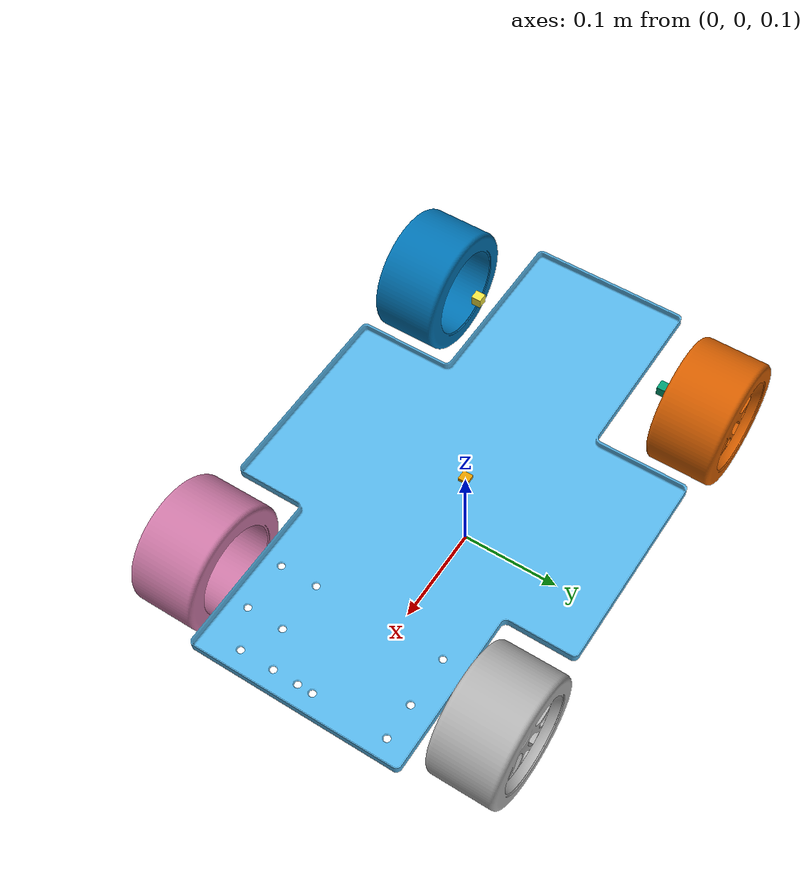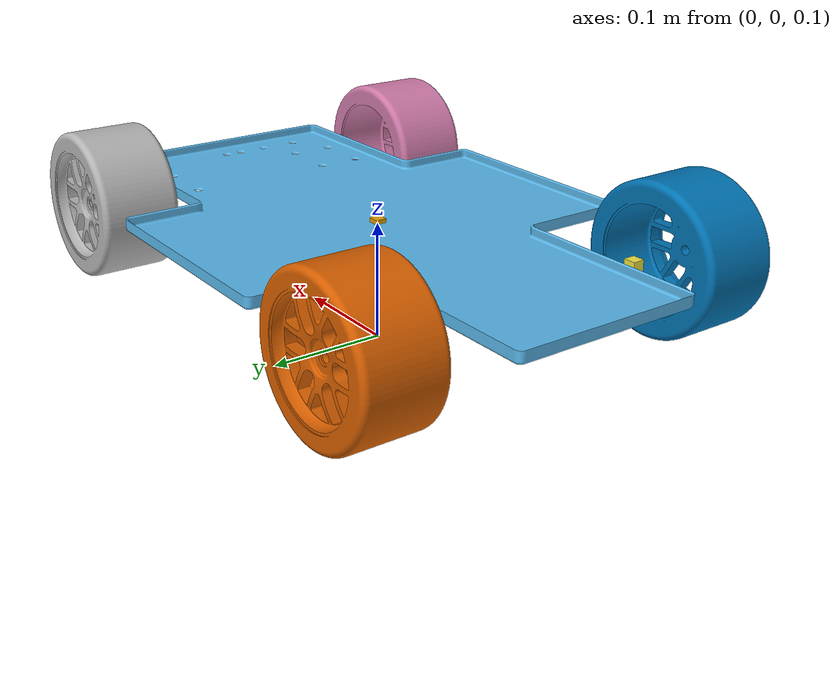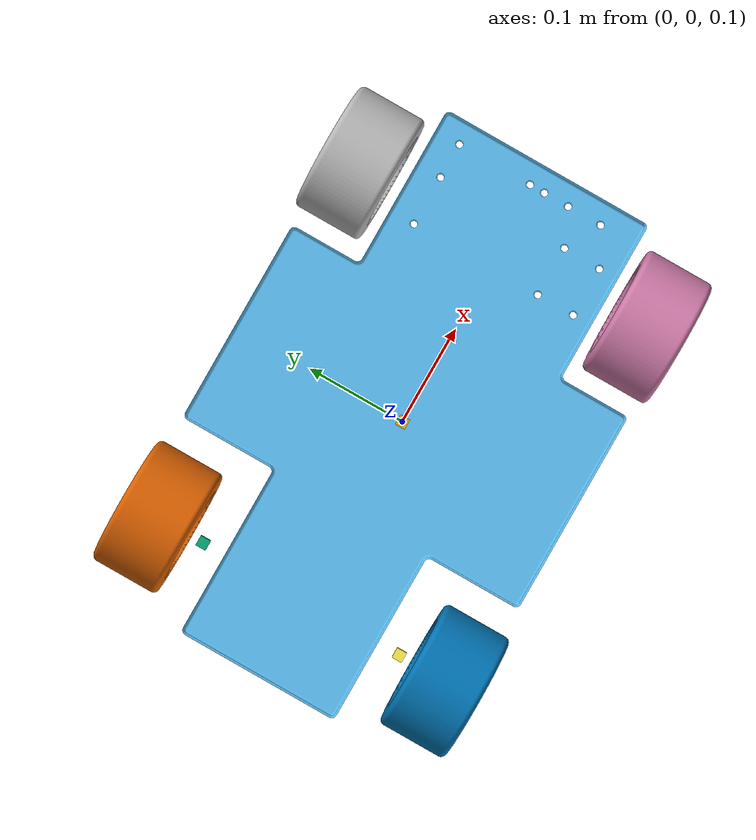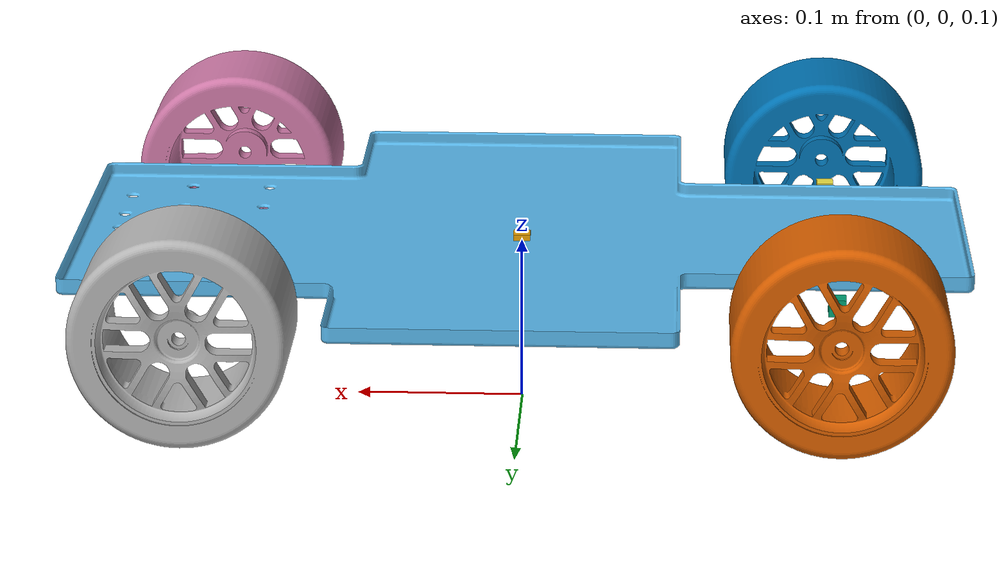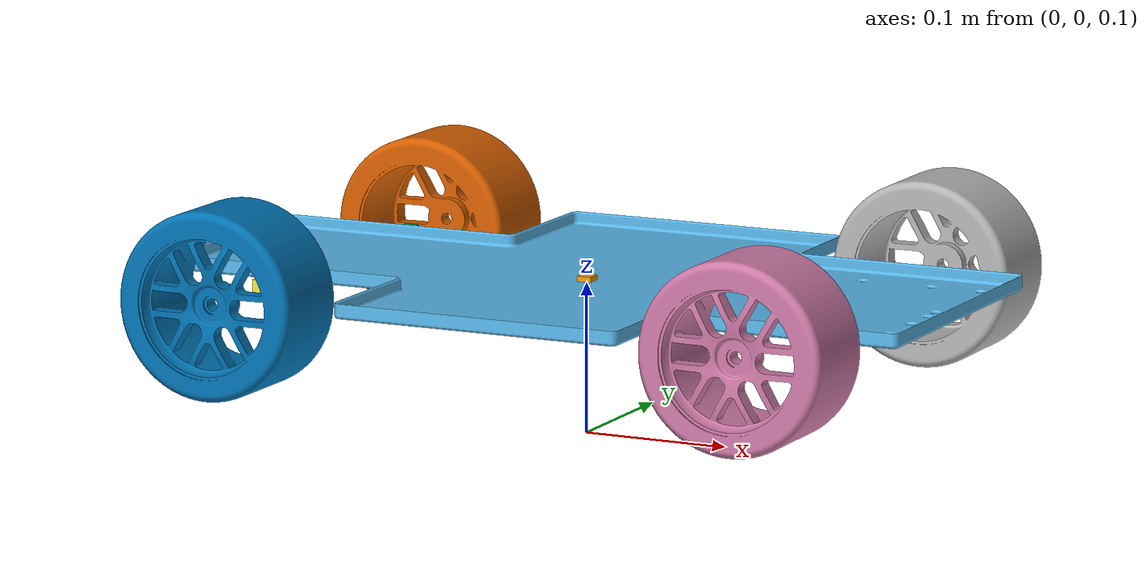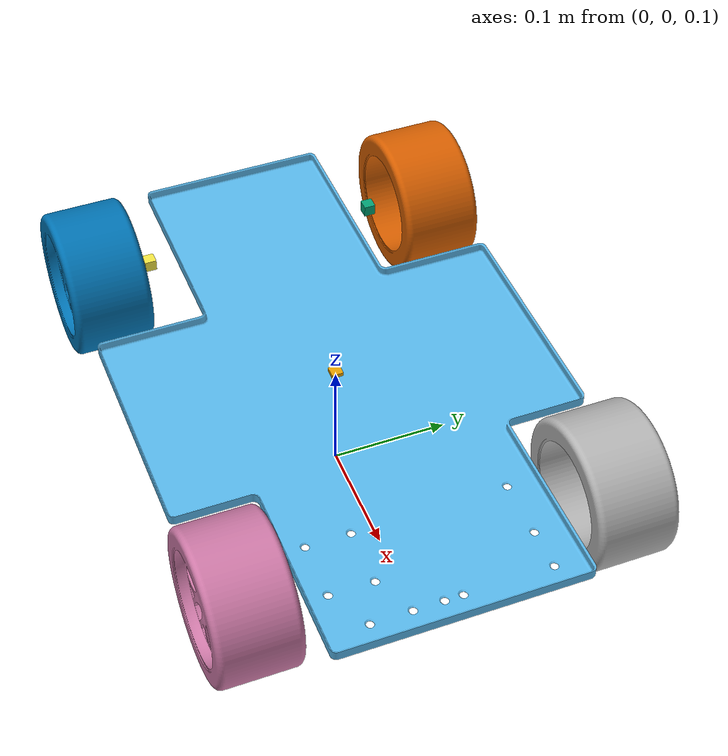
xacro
<?xml version="1.0"?>
<robot name="vehicle" xmlns:xacro="http://ros.org/wiki/xacro">

    <xacro:property name="VehicleHeight" value="0.2" />

    <xacro:property name="Right" value="-1" />
    <xacro:property name="Left" value="1" />

    <xacro:property name="Back" value="1" />
    <xacro:property name="Front" value="-1" />

    <xacro:property name="DistWheelsRightLeft" value="0.300" />
    <xacro:property name="DistWheelsFrontBack" value="0.370" />
    <xacro:property name="AxleSize" value="0.205" />
    <xacro:property name="AxleWheels" value="0.0475" />

    <xacro:property name="WheelMass" value="1" />
    <xacro:property name="BaseMass" value="4" />

    <link name="vehicle">
        <visual>
            <origin rpy="0 0 0" xyz="0 0 ${VehicleHeight}"/>
            <geometry>
                <box size="0.01 0.01 0.01"/>
            </geometry>
        </visual>
    </link>

    <link name="base_link">
        <visual>
            <origin xyz="0 0 ${VehicleHeight}"/>
            <geometry>
                <mesh filename="package://autonomous_vehicle_description/meshes/Base.stl"/>
            </geometry>
        </visual>
        <collision>
            <origin xyz="0 0 ${VehicleHeight}"/>
            <geometry>
                <box size="0.53 0.14 0.01"/>
            </geometry>
        </collision>

        <inertial>
            <mass value="${BaseMass}" />
            <inertia ixx="0.163866" ixy="-0.000150" ixz="0.000062" iyy="0.418963" iyz="0.000000" izz="0.582709" />
        </inertial>

    </link>

    <joint name="vehicle_dummy_joint" type="fixed">
        <parent link="vehicle"/>
        <child link="base_link"/>
        <origin xyz="0 0 0"/>
    </joint>

    <link name="left_axle">
        <visual>
            <geometry>
                <box size="0.01 0.01 0.01"/>
            </geometry>
        </visual>
        <contact>
            <geometry>
                <box size="0.01 0.01 0.01"/>
            </geometry>
        </contact>
        <inertial>
            <mass value="0.01" />
            <inertia ixx="0.001" ixy="0.000000" ixz="0.000000" iyy="0.001" iyz="0.000000" izz="0.001" />
        </inertial>
    </link>

    <joint name="axle_left_rotate_joint" type="revolute">
        <axis xyz="0 0 1"/>
        <parent link="vehicle"/>
        <child link="left_axle"/>
        <origin xyz="${Front * DistWheelsFrontBack/2} ${Left*AxleSize/2} ${VehicleHeight}"/>
        <limit effort="1000.0" lower="-0.35" upper="0.35" velocity="0.5"/>
    </joint>

    <transmission name="axle_left_rotate_trans">
        <type>hardware_interface/SimpleTransmission</type>
        <actuator name="$axle_left_rotate_motor">
          <mechanicalReduction>1</mechanicalReduction>
        </actuator>
        <joint name="axle_left_rotate_joint">
          <hardwareInterface>PositionJointInterface</hardwareInterface>
        </joint>
    </transmission>

    <link name="right_axle">
        <visual>
            <geometry>
                <box size="0.01 0.01 0.01"/>
            </geometry>
        </visual>
        <contact>
            <geometry>
                <box size="0.01 0.01 0.01"/>
            </geometry>
        </contact>
        <inertial>
            <mass value="0.01" />
            <inertia ixx="0.001" ixy="0.000000" ixz="0.000000" iyy="0.001" iyz="0.000000" izz="0.001" />
        </inertial>
    </link>

    <joint name="axle_right_rotate_joint" type="revolute">
        <axis xyz="0 0 1"/>
        <parent link="vehicle"/>
        <child link="right_axle"/>
        <origin xyz="${Front * DistWheelsFrontBack/2} ${Right*AxleSize/2} ${VehicleHeight}"/>
        <limit effort="1000.0" lower="-0.35" upper="0.35" velocity="0.5"/>
    </joint>

    <transmission name="axle_right_rotate_trans">
        <type>hardware_interface/SimpleTransmission</type>
        <actuator name="$axle_right_rotate_motor">
          <mechanicalReduction>1</mechanicalReduction>
        </actuator>
        <joint name="axle_right_rotate_joint">
          <hardwareInterface>PositionJointInterface</hardwareInterface>
        </joint>
    </transmission>

    <xacro:macro name="BackWheelMacro" params="Sufix RighLeft">

        <link name="${Sufix}_Back">

            <visual>
                <!--origin xyz="0 0 ${VehicleHeight}"/-->
                <geometry>
                    <mesh filename="package://autonomous_vehicle_description/meshes/${Sufix}.stl"/>
                </geometry>
            </visual>
            <collision>
                <origin rpy="${pi/2} 0 0"/>
                <geometry>
                    <cylinder radius="0.0620" length="0.0670"/>
                </geometry>
            </collision>

            <inertial>
                <mass value="${WheelMass}" />
                <inertia ixx="0.073454" ixy="0.000000" ixz="-0.000000" iyy="0.116212" iyz="0.000000" izz="0.073454" />
            </inertial>

        </link>

        <joint name="${Sufix}_joint" type="continuous">
            <axis xyz="0 1 0"/>
            <parent link="base_link"/>
            <child link="${Sufix}_Back"/>
            <origin xyz="${Back * DistWheelsFrontBack/2} ${RighLeft*DistWheelsRightLeft/2} ${VehicleHeight}"/>
        </joint>

        <transmission name="${Sufix}_motor_trans">
            <type>hardware_interface/SimpleTransmission</type>
            <actuator name="${Sufix}_motor_motor">
              <mechanicalReduction>1</mechanicalReduction>
            </actuator>
            <joint name="${Sufix}_joint">
              <hardwareInterface>VelocityJointInterface</hardwareInterface>
            </joint>
        </transmission>

    </xacro:macro>

    <xacro:macro name="FrontWheelMacro" params="Sufix RighLeft">

        <link name="${Sufix}_Front">

            <visual>
                <!--origin xyz="0 0 ${VehicleHeight}"/-->
                <geometry>
                    <mesh filename="package://autonomous_vehicle_description/meshes/${Sufix}.stl"/>
                </geometry>
            </visual>
            <collision>
                <origin rpy="${pi/2} 0 0"/>
                <geometry>
                    <cylinder radius="0.0620" length="0.0670"/>
                </geometry>
            </collision>

            <inertial>
                <mass value="${WheelMass}" />
                <inertia ixx="0.073454" ixy="0.000000" ixz="-0.000000" iyy="0.116212" iyz="0.000000" izz="0.073454" />
            </inertial>

        </link>

    </xacro:macro>

    <xacro:FrontWheelMacro Sufix="RightWheel"  RighLeft="${Right}"/>

    <xacro:FrontWheelMacro Sufix="LeftWheel"  RighLeft="${Left}"/>

    <xacro:BackWheelMacro Sufix="RightWheel"  RighLeft="${Right}"/>

    <xacro:BackWheelMacro Sufix="LeftWheel"  RighLeft="${Left}"/>

    <joint name="wheel_right_rotate_joint" type="continuous">
        <axis xyz="0 1 0"/>
        <parent link="right_axle"/>
        <child link="RightWheel_Front"/>
        <origin xyz="0 ${Right*AxleWheels} 0"/>
    </joint>

    <joint name="wheel_left_rotate_joint" type="continuous">
        <axis xyz="0 1 0"/>
        <parent link="left_axle"/>
        <child link="LeftWheel_Front"/>
        <origin xyz="0 ${Left*AxleWheels} 0"/>
    </joint>

    <gazebo>
        <plugin name="gazebo_ros_control" filename="libgazebo_ros_control.so">
            <robotNamespace>/autonomous_vehicle</robotNamespace>
            <robotSimType>gazebo_ros_control/DefaultRobotHWSim</robotSimType>
        </plugin>
      </gazebo>

</robot>
